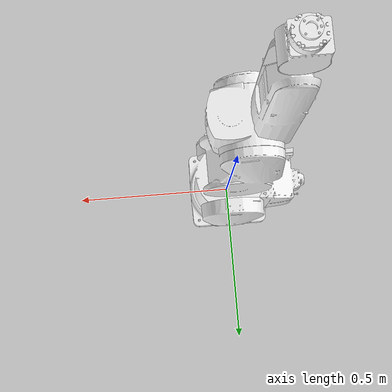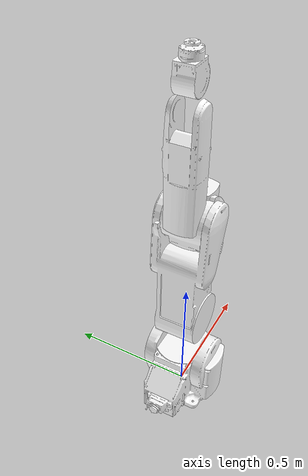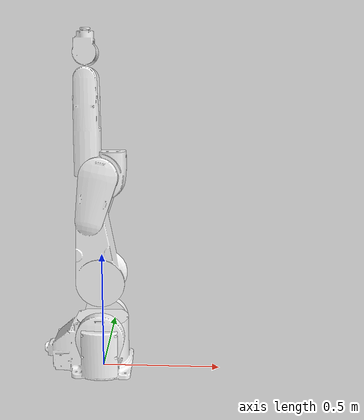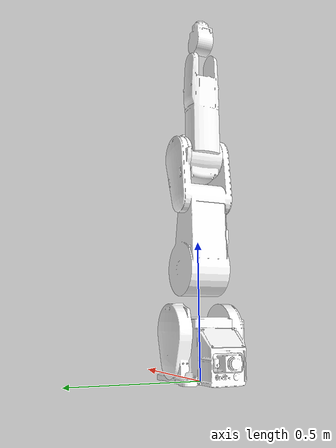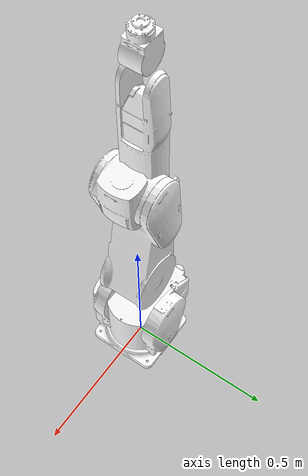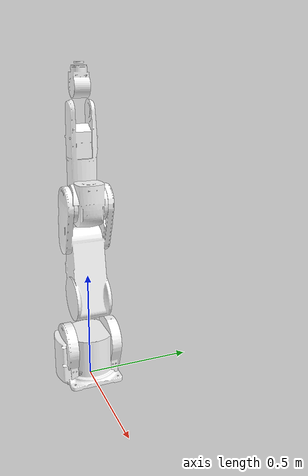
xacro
<?xml version="1.0"?>
<robot xmlns:xacro="http://www.ros.org/wiki/xacro" name="rv7frl">

    <!-- Enable setting arguments from the launch file -->
    <xacro:arg name="use_sim" default="false" />
    <xacro:arg name="use_fake_hardware" default="true" />
    <xacro:arg name="prefix" default="" />
    <xacro:arg name="robot_ip" default="192.168.0.20" />
    <xacro:arg name="robot_port" default="10000" />
    <xacro:arg name="initial_positions_file" default="initial_positions_rv.yaml" />
    <xacro:arg name="controller_config" default="custom_io_params.yaml" />
    <xacro:arg name="controller_type" default="" />
    <xacro:arg name="scara" default="0" />
    <xacro:arg name="is_j7" default="0" />
    <xacro:arg name="j7_linear" default="0" />
    <xacro:arg name="is_j8" default="0" />
    <xacro:arg name="j8_linear" default="0" />
    <xacro:arg name="simulation_controllers" default="" />

    <!-- Import urdf file -->
    <xacro:include filename="$(find melfa_description)/urdf/rv7frl/rv7frl_macro.xacro" />
    <!-- Import ros2_control description -->
    <xacro:include filename="$(find melfa_description)/ros2_control/rv7frl.hardware.xacro" />

    <!-- Use world link to fix robot -->
    <link name="$(arg prefix)world"/>
    <xacro:rv7frl parent="$(arg prefix)world" prefix="$(arg prefix)">
        <origin xyz="0 0 0" rpy="0 0 0" />
    </xacro:rv7frl>
    <xacro:rv7frl_hardware
        name="rv7frl"
        prefix="$(arg prefix)"
        robot_ip="$(arg robot_ip)"
        robot_port="$(arg robot_port)"
        scara="$(arg scara)"
        is_j7="$(arg is_j7)"
        j7_linear="$(arg j7_linear)"
        is_j8="$(arg is_j8)"
        j8_linear="$(arg j8_linear)"
        initial_positions_file="$(arg initial_positions_file)"
        controller_config="$(arg controller_config)"
        use_sim="$(arg use_sim)"
        use_fake_hardware="$(arg use_fake_hardware)"
        controller_type="$(arg controller_type)"
        />
    <xacro:if value="$(arg use_sim)">
        <!-- Gazebo plugins -->
        <gazebo reference="world">
        </gazebo>
        <gazebo>
        <plugin filename="libign_ros2_control-system.so" name="ign_ros2_control::IgnitionROS2ControlPlugin">
            <parameters>$(arg simulation_controllers)</parameters>
            <controller_manager_node_name>$(arg prefix)controller_manager</controller_manager_node_name>
        </plugin>
        </gazebo>
    </xacro:if>

</robot>

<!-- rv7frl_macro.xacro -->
<robot xmlns:xacro="http://www.ros.org/wiki/xacro">
    <xacro:macro name="cylinder_inertial" params="radius length mass *origin">
        <inertial>
        <mass value="${mass}" />
        <xacro:insert_block name="origin" />
        <inertia ixx="${0.0833333 * mass * (3 * radius * radius + length * length)}" ixy="0.0" ixz="0.0"
            iyy="${0.0833333 * mass * (3 * radius * radius + length * length)}" iyz="0.0"
            izz="${0.5 * mass * radius * radius}" />
        </inertial>
    </xacro:macro>
    <xacro:macro name="rv7frl" params="parent prefix *origin">
        <!-- Inertial parameters -->
        <xacro:property name="base_mass" value="0.4" />  <!-- These mass are INCORRRECT -->
        <xacro:property name="shoulder_mass" value="0.37000" />
        <xacro:property name="upper_arm_mass" value="0.83930" />
        <xacro:property name="elbow_mass" value="0.22750" />
        <xacro:property name="forearm_mass" value="0.12190" />
        <xacro:property name="wrist_mass" value="0.12190" />
        <xacro:property name="hand_flange_mass" value="0.01879" />

        <material name="white">
            <color rgba="1.0 1.0 1.0 1.0"/>
        </material>
        <joint name="${prefix}rv7frl_world_to_base" type="fixed">
            <origin xyz="0 0 0" rpy="0 -0 0" />
            <parent link="${parent}" />
            <child link="${prefix}rv7frl_base"/>
            <dynamics damping="1.0" friction="1.0"/>
        </joint>
        <joint name="${prefix}rv7frl_joint_1" type="revolute">
            <origin xyz="0 0 0" rpy="0 0 0" />
            <parent link="${prefix}rv7frl_base"/>
            <child link="${prefix}rv7frl_shoulder"/>
             <axis xyz="0 0 1" />
            <limit lower="-4.188790" upper="4.188790" effort="1" velocity="5.026548" />
            <dynamics damping="1.0" friction="1.0"/>
        </joint>
        <joint name="${prefix}rv7frl_joint_2" type="revolute">
            <origin xyz="0 0 0.4" rpy="0 0 0" />
            <parent link="${prefix}rv7frl_shoulder"/>
            <child link="${prefix}rv7frl_upper_arm"/>
            <axis xyz="0 1 0" />
            <limit lower="-1.919862" upper="2.268928" effort="1" velocity="5.602507" />
            <dynamics damping="1.0" friction="1.0"/>
        </joint>
        <joint name="${prefix}rv7frl_joint_3" type="revolute">
            <origin xyz="0 0 0.435" rpy="0 0 0" />
            <parent link="${prefix}rv7frl_upper_arm" />
            <child link="${prefix}rv7frl_elbow" />
            <axis xyz="0 1 0" />
            <limit lower="0.000000" upper="2.827433" effort="1" velocity="6.283185" />
            <dynamics damping="1.0" friction="1.0"/>
        </joint>
        <joint name="${prefix}rv7frl_joint_4" type="revolute">
            <origin xyz="-0.05 0 0" rpy="0 0 0" />
            <parent link="${prefix}rv7frl_elbow" />
            <child link="${prefix}rv7frl_forearm" />
            <axis xyz="0 0 1" />
            <limit lower="-3.490659" upper="3.490659" effort="1" velocity="5.881760" />
            <dynamics damping="1.0" friction="1.0"/>
        </joint>
        <joint name="${prefix}rv7frl_joint_5" type="revolute">
            <origin xyz="0 0 0.47" rpy="0 0 0" />
            <parent link="${prefix}rv7frl_forearm" />
            <child link="${prefix}rv7frl_wrist" />
            <axis xyz="0 1 0" />
            <limit lower="-2.094395" upper="2.094395" effort="1" velocity="7.853981" />
            <dynamics damping="1.0" friction="1.0"/>
        </joint>
        <joint name="${prefix}rv7frl_joint_6" type="revolute">
            <origin xyz="0 0 0.085" rpy="0 0 0" />
            <parent link="${prefix}rv7frl_wrist" />
            <child link="${prefix}rv7frl_hand_flange" />
            <axis xyz="0 0 1" />
            <limit lower="-6.283185" upper="6.283185" effort="1" velocity="12.566371" />
            <dynamics damping="1.0" friction="1.0"/>
        </joint>
        <joint name="${prefix}rv7frl_hand_flange-to-default_tcp" type="fixed">
            <origin xyz="0 0 0" rpy="0 0 0" />
            <parent link="${prefix}rv7frl_hand_flange"/>
            <child link="${prefix}rv7frl_default_tcp"/>
            <dynamics damping="1.0" friction="1.0"/>
        </joint>
        <link name="${prefix}rv7frl_base">
            <visual>
                <material name="white"/>
                <origin rpy="0 0 0" xyz="0 0 0"/>
                <geometry>
                    <mesh filename="package://melfa_description/meshes/rv7frl/base.STL" />
                </geometry>
            </visual>
            <collision>
                <origin rpy="0 0 0" xyz="0 0 0"/>
                <geometry>
                    <mesh filename="package://melfa_description/meshes/rv7frl/base.STL" />
                </geometry>
            </collision>
            <xacro:cylinder_inertial radius="0.06" length="0.05" mass="${base_mass}">
                <origin xyz="0.0 0.0 0.0" rpy="0 0 0" />
            </xacro:cylinder_inertial>
        </link>
        <link name="${prefix}rv7frl_shoulder">
            <visual>
                <material name="white"/>
                <origin rpy="0 0 0" xyz="0 0 0"/>
                <geometry>
                    <mesh filename="package://melfa_description/meshes/rv7frl/shoulder.STL" />
                </geometry>
            </visual>
            <collision>
                <origin rpy="0 0 0" xyz="0 0 0"/>
                <geometry>
                    <mesh filename="package://melfa_description/meshes/rv7frl/shoulder.STL" />
                </geometry>
            </collision>
            <xacro:cylinder_inertial radius="0.06" length="0.05" mass="${shoulder_mass}">
                <origin xyz="0.0 0.0 0.0" rpy="0 0 0" />
            </xacro:cylinder_inertial>
        </link>
        <link name="${prefix}rv7frl_upper_arm">
            <visual>
                <material name="white"/>
                <origin rpy="0 0 0" xyz="0 0 0"/>
                <geometry>
                    <mesh filename="package://melfa_description/meshes/rv7frl/upper_arm.STL" />
                </geometry>
            </visual>
            <collision>
                <origin rpy="0 0 0" xyz="0 0 0"/>
                <geometry>
                    <mesh filename="package://melfa_description/meshes/rv7frl/upper_arm.STL" />
                </geometry>
            </collision>
            <xacro:cylinder_inertial radius="0.06" length="0.05" mass="${upper_arm_mass}">
                <origin xyz="0.0 0.0 0.0" rpy="0 0 0" />
            </xacro:cylinder_inertial>
        </link>
        <link name="${prefix}rv7frl_elbow">
            <visual>
                <material name="white"/>
                <origin rpy="0 0 0" xyz="0 0 0"/>
                <geometry>
                    <mesh filename="package://melfa_description/meshes/rv7frl/elbow.STL" />
                </geometry>
            </visual>
            <collision>
                <origin rpy="0 0 0" xyz="0 0 0"/>
                <geometry>
                    <mesh filename="package://melfa_description/meshes/rv7frl/elbow.STL" />
                </geometry>
            </collision>
            <xacro:cylinder_inertial radius="0.06" length="0.05" mass="${elbow_mass}">
                <origin xyz="0.0 0.0 0.0" rpy="0 0 0" />
            </xacro:cylinder_inertial>
        </link>
        <link name="${prefix}rv7frl_forearm">
            <visual>
                <material name="white"/>
                <origin rpy="0 0 0" xyz="0 0 0"/>
                <geometry>
                    <mesh filename="package://melfa_description/meshes/rv7frl/forearm.STL" />
                </geometry>
            </visual>
            <collision>
                <origin rpy="0 0 0" xyz="0 0 0"/>
                <geometry>
                    <mesh filename="package://melfa_description/meshes/rv7frl/forearm.STL" />
                </geometry>
            </collision>
            <xacro:cylinder_inertial radius="0.06" length="0.05" mass="${forearm_mass}">
                <origin xyz="0.0 0.0 0.0" rpy="0 0 0" />
            </xacro:cylinder_inertial>
        </link>
        <link name="${prefix}rv7frl_wrist">
            <visual>
                <material name="white"/>
                <origin rpy="0 0 0" xyz="0 0 0"/>
                <geometry>
                    <mesh filename="package://melfa_description/meshes/rv7frl/wrist.STL" />
                </geometry>
            </visual>
            <collision>
                <origin rpy="0 0 0" xyz="0 0 0"/>
                <geometry>
                    <mesh filename="package://melfa_description/meshes/rv7frl/wrist.STL" />
                </geometry>
            </collision>
            <xacro:cylinder_inertial radius="0.06" length="0.05" mass="${wrist_mass}">
                <origin xyz="0.0 0.0 0.0" rpy="0 0 0" />
            </xacro:cylinder_inertial>
        </link>
        <link name="${prefix}rv7frl_hand_flange">
            <visual>
                <material name="white"/>
                <origin rpy="0 0 0" xyz="0 0 0"/>
                <geometry>
                    <mesh filename="package://melfa_description/meshes/rv7frl/hand_flange.STL" />
                </geometry>
            </visual>
            <collision>
                <origin rpy="0 0 0" xyz="0 0 0"/>
                <geometry>
                    <mesh filename="package://melfa_description/meshes/rv7frl/hand_flange.STL" />
                </geometry>
            </collision>
            <xacro:cylinder_inertial radius="0.06" length="0.05" mass="${hand_flange_mass}">
                <origin xyz="0.0 0.0 0.0" rpy="0 0 0" />
            </xacro:cylinder_inertial>
        </link>
        <link name="${prefix}rv7frl_default_tcp" />
    </xacro:macro>
</robot>
